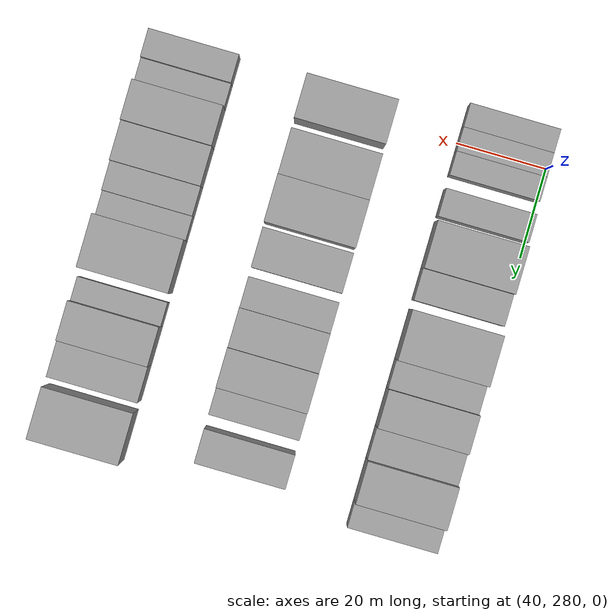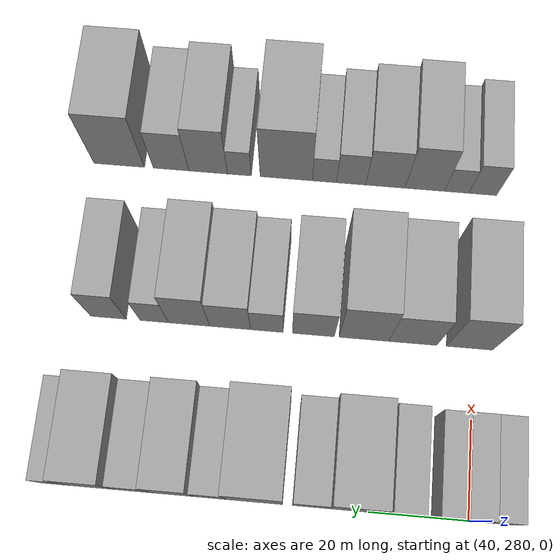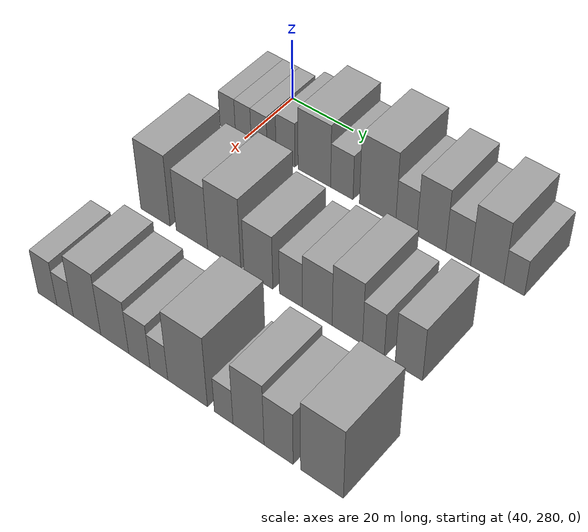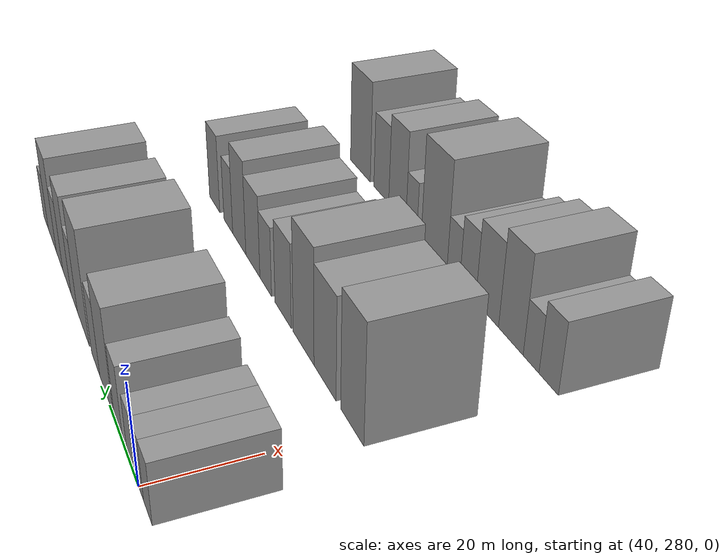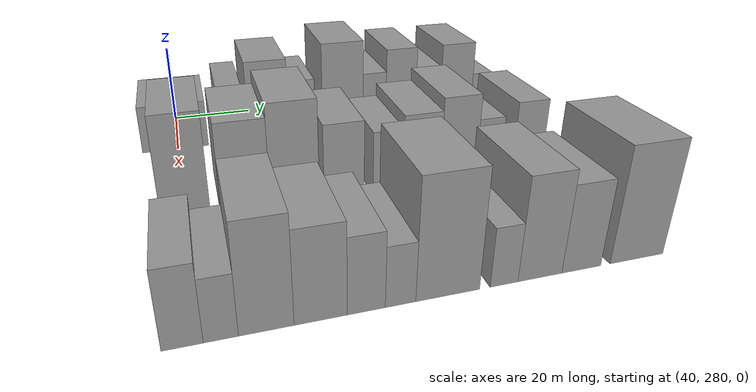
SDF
<sdf version="1.6">
 <world name="default">
  <model name="building_68">
   <static>1</static>
   <pose>50.0000 274.1723 0 0.000000 0.000000 0.000000</pose>
   <link name="link">
    <pose>0 0 6.00 0 0 0</pose>
    <collision name="collision"><geometry><box><size>20.0000 5.2593 12.0000</size></box></geometry></collision>
    <visual name="visual">
     <cast_shadows>0</cast_shadows>
     <geometry><box><size>20.0000 5.2593 12.0000</size></box></geometry>
     <material>
      <script>
       <uri>model://grey_wall/materials/scripts</uri>
       <uri>model://grey_wall/materials/textures</uri>
       <name>vrc/grey_wall</name>
      </script>
     </material>
    </visual>
   </link>
  </model>
  <model name="building_69">
   <static>1</static>
   <pose>50.0000 279.4774 0 0.000000 0.000000 0.000000</pose>
   <link name="link">
    <pose>0 0 6.00 0 0 0</pose>
    <collision name="collision"><geometry><box><size>20.0000 5.3509 12.0000</size></box></geometry></collision>
    <visual name="visual">
     <cast_shadows>0</cast_shadows>
     <geometry><box><size>20.0000 5.3509 12.0000</size></box></geometry>
     <material>
      <script>
       <uri>model://grey_wall/materials/scripts</uri>
       <uri>model://grey_wall/materials/textures</uri>
       <name>vrc/grey_wall</name>
      </script>
     </material>
    </visual>
   </link>
  </model>
  <model name="building_70">
   <static>1</static>
   <pose>50.0000 284.8204 0 0.000000 0.000000 0.000000</pose>
   <link name="link">
    <pose>0 0 6.00 0 0 0</pose>
    <collision name="collision"><geometry><box><size>20.0000 5.3351 12.0000</size></box></geometry></collision>
    <visual name="visual">
     <cast_shadows>0</cast_shadows>
     <geometry><box><size>20.0000 5.3351 12.0000</size></box></geometry>
     <material>
      <script>
       <uri>model://grey_wall/materials/scripts</uri>
       <uri>model://grey_wall/materials/textures</uri>
       <name>vrc/grey_wall</name>
      </script>
     </material>
    </visual>
   </link>
  </model>
  <model name="building_71">
   <static>1</static>
   <pose>50.0000 293.5836 0 0.000000 0.000000 0.000000</pose>
   <link name="link">
    <pose>0 0 7.50 0 0 0</pose>
    <collision name="collision"><geometry><box><size>20.0000 6.1914 15.0000</size></box></geometry></collision>
    <visual name="visual">
     <cast_shadows>0</cast_shadows>
     <geometry><box><size>20.0000 6.1914 15.0000</size></box></geometry>
     <material>
      <script>
       <uri>model://grey_wall/materials/scripts</uri>
       <uri>model://grey_wall/materials/textures</uri>
       <name>vrc/grey_wall</name>
      </script>
     </material>
    </visual>
   </link>
  </model>
  <model name="building_72">
   <static>1</static>
   <pose>50.0000 302.9027 0 0.000000 0.000000 0.000000</pose>
   <link name="link">
    <pose>0 0 10.50 0 0 0</pose>
    <collision name="collision"><geometry><box><size>20.0000 10.4468 21.0000</size></box></geometry></collision>
    <visual name="visual">
     <cast_shadows>0</cast_shadows>
     <geometry><box><size>20.0000 10.4468 21.0000</size></box></geometry>
     <material>
      <script>
       <uri>model://grey_wall/materials/scripts</uri>
       <uri>model://grey_wall/materials/textures</uri>
       <name>vrc/grey_wall</name>
      </script>
     </material>
    </visual>
   </link>
  </model>
  <model name="building_73">
   <static>1</static>
   <pose>50.0000 311.6492 0 0.000000 0.000000 0.000000</pose>
   <link name="link">
    <pose>0 0 7.50 0 0 0</pose>
    <collision name="collision"><geometry><box><size>20.0000 7.0461 15.0000</size></box></geometry></collision>
    <visual name="visual">
     <cast_shadows>0</cast_shadows>
     <geometry><box><size>20.0000 7.0461 15.0000</size></box></geometry>
     <material>
      <script>
       <uri>model://grey_wall/materials/scripts</uri>
       <uri>model://grey_wall/materials/textures</uri>
       <name>vrc/grey_wall</name>
      </script>
     </material>
    </visual>
   </link>
  </model>
  <model name="building_74">
   <static>1</static>
   <pose>50.0000 322.7267 0 0.000000 0.000000 0.000000</pose>
   <link name="link">
    <pose>0 0 12.00 0 0 0</pose>
    <collision name="collision"><geometry><box><size>20.0000 11.1089 24.0000</size></box></geometry></collision>
    <visual name="visual">
     <cast_shadows>0</cast_shadows>
     <geometry><box><size>20.0000 11.1089 24.0000</size></box></geometry>
     <material>
      <script>
       <uri>model://grey_wall/materials/scripts</uri>
       <uri>model://grey_wall/materials/textures</uri>
       <name>vrc/grey_wall</name>
      </script>
     </material>
    </visual>
   </link>
  </model>
  <model name="building_75">
   <static>1</static>
   <pose>50.0000 331.4624 0 0.000000 0.000000 0.000000</pose>
   <link name="link">
    <pose>0 0 7.50 0 0 0</pose>
    <collision name="collision"><geometry><box><size>20.0000 6.3625 15.0000</size></box></geometry></collision>
    <visual name="visual">
     <cast_shadows>0</cast_shadows>
     <geometry><box><size>20.0000 6.3625 15.0000</size></box></geometry>
     <material>
      <script>
       <uri>model://grey_wall/materials/scripts</uri>
       <uri>model://grey_wall/materials/textures</uri>
       <name>vrc/grey_wall</name>
      </script>
     </material>
    </visual>
   </link>
  </model>
  <model name="building_76">
   <static>1</static>
   <pose>50.0000 338.9023 0 0.000000 0.000000 0.000000</pose>
   <link name="link">
    <pose>0 0 10.50 0 0 0</pose>
    <collision name="collision"><geometry><box><size>20.0000 8.5175 21.0000</size></box></geometry></collision>
    <visual name="visual">
     <cast_shadows>0</cast_shadows>
     <geometry><box><size>20.0000 8.5175 21.0000</size></box></geometry>
     <material>
      <script>
       <uri>model://grey_wall/materials/scripts</uri>
       <uri>model://grey_wall/materials/textures</uri>
       <name>vrc/grey_wall</name>
      </script>
     </material>
    </visual>
   </link>
  </model>
  <model name="building_77">
   <static>1</static>
   <pose>50.0000 346.7569 0 0.000000 0.000000 0.000000</pose>
   <link name="link">
    <pose>0 0 7.50 0 0 0</pose>
    <collision name="collision"><geometry><box><size>20.0000 7.1917 15.0000</size></box></geometry></collision>
    <visual name="visual">
     <cast_shadows>0</cast_shadows>
     <geometry><box><size>20.0000 7.1917 15.0000</size></box></geometry>
     <material>
      <script>
       <uri>model://grey_wall/materials/scripts</uri>
       <uri>model://grey_wall/materials/textures</uri>
       <name>vrc/grey_wall</name>
      </script>
     </material>
    </visual>
   </link>
  </model>
  <model name="building_78">
   <static>1</static>
   <pose>50.0000 355.0587 0 0.000000 0.000000 0.000000</pose>
   <link name="link">
    <pose>0 0 10.50 0 0 0</pose>
    <collision name="collision"><geometry><box><size>20.0000 9.4119 21.0000</size></box></geometry></collision>
    <visual name="visual">
     <cast_shadows>0</cast_shadows>
     <geometry><box><size>20.0000 9.4119 21.0000</size></box></geometry>
     <material>
      <script>
       <uri>model://grey_wall/materials/scripts</uri>
       <uri>model://grey_wall/materials/textures</uri>
       <name>vrc/grey_wall</name>
      </script>
     </material>
    </visual>
   </link>
  </model>
  <model name="building_79">
   <static>1</static>
   <pose>50.0000 362.6301 0 0.000000 0.000000 0.000000</pose>
   <link name="link">
    <pose>0 0 6.00 0 0 0</pose>
    <collision name="collision"><geometry><box><size>20.0000 5.7309 12.0000</size></box></geometry></collision>
    <visual name="visual">
     <cast_shadows>0</cast_shadows>
     <geometry><box><size>20.0000 5.7309 12.0000</size></box></geometry>
     <material>
      <script>
       <uri>model://grey_wall/materials/scripts</uri>
       <uri>model://grey_wall/materials/textures</uri>
       <name>vrc/grey_wall</name>
      </script>
     </material>
    </visual>
   </link>
  </model>
  <model name="building_156">
   <static>1</static>
   <pose>85.0000 280.7438 0 0.000000 0.000000 0.000000</pose>
   <link name="link">
    <pose>0 0 12.00 0 0 0</pose>
    <collision name="collision"><geometry><box><size>20.0000 9.7118 24.0000</size></box></geometry></collision>
    <visual name="visual">
     <cast_shadows>0</cast_shadows>
     <geometry><box><size>20.0000 9.7118 24.0000</size></box></geometry>
     <material>
      <script>
       <uri>model://grey_wall/materials/scripts</uri>
       <uri>model://grey_wall/materials/textures</uri>
       <name>vrc/grey_wall</name>
      </script>
     </material>
    </visual>
   </link>
  </model>
  <model name="building_157">
   <static>1</static>
   <pose>85.0000 292.6881 0 0.000000 0.000000 0.000000</pose>
   <link name="link">
    <pose>0 0 10.50 0 0 0</pose>
    <collision name="collision"><geometry><box><size>20.0000 10.1768 21.0000</size></box></geometry></collision>
    <visual name="visual">
     <cast_shadows>0</cast_shadows>
     <geometry><box><size>20.0000 10.1768 21.0000</size></box></geometry>
     <material>
      <script>
       <uri>model://grey_wall/materials/scripts</uri>
       <uri>model://grey_wall/materials/textures</uri>
       <name>vrc/grey_wall</name>
      </script>
     </material>
    </visual>
   </link>
  </model>
  <model name="building_158">
   <static>1</static>
   <pose>85.0000 303.0024 0 0.000000 0.000000 0.000000</pose>
   <link name="link">
    <pose>0 0 12.00 0 0 0</pose>
    <collision name="collision"><geometry><box><size>20.0000 10.4519 24.0000</size></box></geometry></collision>
    <visual name="visual">
     <cast_shadows>0</cast_shadows>
     <geometry><box><size>20.0000 10.4519 24.0000</size></box></geometry>
     <material>
      <script>
       <uri>model://grey_wall/materials/scripts</uri>
       <uri>model://grey_wall/materials/textures</uri>
       <name>vrc/grey_wall</name>
      </script>
     </material>
    </visual>
   </link>
  </model>
  <model name="building_159">
   <static>1</static>
   <pose>85.0000 313.6577 0 0.000000 0.000000 0.000000</pose>
   <link name="link">
    <pose>0 0 9.00 0 0 0</pose>
    <collision name="collision"><geometry><box><size>20.0000 8.8586 18.0000</size></box></geometry></collision>
    <visual name="visual">
     <cast_shadows>0</cast_shadows>
     <geometry><box><size>20.0000 8.8586 18.0000</size></box></geometry>
     <material>
      <script>
       <uri>model://grey_wall/materials/scripts</uri>
       <uri>model://grey_wall/materials/textures</uri>
       <name>vrc/grey_wall</name>
      </script>
     </material>
    </visual>
   </link>
  </model>
  <model name="building_160">
   <static>1</static>
   <pose>85.0000 323.5166 0 0.000000 0.000000 0.000000</pose>
   <link name="link">
    <pose>0 0 7.50 0 0 0</pose>
    <collision name="collision"><geometry><box><size>20.0000 6.8592 15.0000</size></box></geometry></collision>
    <visual name="visual">
     <cast_shadows>0</cast_shadows>
     <geometry><box><size>20.0000 6.8592 15.0000</size></box></geometry>
     <material>
      <script>
       <uri>model://grey_wall/materials/scripts</uri>
       <uri>model://grey_wall/materials/textures</uri>
       <name>vrc/grey_wall</name>
      </script>
     </material>
    </visual>
   </link>
  </model>
  <model name="building_161">
   <static>1</static>
   <pose>85.0000 331.3080 0 0.000000 0.000000 0.000000</pose>
   <link name="link">
    <pose>0 0 9.00 0 0 0</pose>
    <collision name="collision"><geometry><box><size>20.0000 8.7237 18.0000</size></box></geometry></collision>
    <visual name="visual">
     <cast_shadows>0</cast_shadows>
     <geometry><box><size>20.0000 8.7237 18.0000</size></box></geometry>
     <material>
      <script>
       <uri>model://grey_wall/materials/scripts</uri>
       <uri>model://grey_wall/materials/textures</uri>
       <name>vrc/grey_wall</name>
      </script>
     </material>
    </visual>
   </link>
  </model>
  <model name="building_162">
   <static>1</static>
   <pose>85.0000 340.0414 0 0.000000 0.000000 0.000000</pose>
   <link name="link">
    <pose>0 0 10.50 0 0 0</pose>
    <collision name="collision"><geometry><box><size>20.0000 8.7431 21.0000</size></box></geometry></collision>
    <visual name="visual">
     <cast_shadows>0</cast_shadows>
     <geometry><box><size>20.0000 8.7431 21.0000</size></box></geometry>
     <material>
      <script>
       <uri>model://grey_wall/materials/scripts</uri>
       <uri>model://grey_wall/materials/textures</uri>
       <name>vrc/grey_wall</name>
      </script>
     </material>
    </visual>
   </link>
  </model>
  <model name="building_163">
   <static>1</static>
   <pose>85.0000 347.4585 0 0.000000 0.000000 0.000000</pose>
   <link name="link">
    <pose>0 0 7.50 0 0 0</pose>
    <collision name="collision"><geometry><box><size>20.0000 6.0912 15.0000</size></box></geometry></collision>
    <visual name="visual">
     <cast_shadows>0</cast_shadows>
     <geometry><box><size>20.0000 6.0912 15.0000</size></box></geometry>
     <material>
      <script>
       <uri>model://grey_wall/materials/scripts</uri>
       <uri>model://grey_wall/materials/textures</uri>
       <name>vrc/grey_wall</name>
      </script>
     </material>
    </visual>
   </link>
  </model>
  <model name="building_164">
   <static>1</static>
   <pose>85.0000 357.2922 0 0.000000 0.000000 0.000000</pose>
   <link name="link">
    <pose>0 0 9.00 0 0 0</pose>
    <collision name="collision"><geometry><box><size>20.0000 7.5762 18.0000</size></box></geometry></collision>
    <visual name="visual">
     <cast_shadows>0</cast_shadows>
     <geometry><box><size>20.0000 7.5762 18.0000</size></box></geometry>
     <material>
      <script>
       <uri>model://grey_wall/materials/scripts</uri>
       <uri>model://grey_wall/materials/textures</uri>
       <name>vrc/grey_wall</name>
      </script>
     </material>
    </visual>
   </link>
  </model>
  <model name="building_239">
   <static>1</static>
   <pose>120.0000 278.7130 0 0.000000 0.000000 0.000000</pose>
   <link name="link">
    <pose>0 0 7.50 0 0 0</pose>
    <collision name="collision"><geometry><box><size>20.0000 6.2513 15.0000</size></box></geometry></collision>
    <visual name="visual">
     <cast_shadows>0</cast_shadows>
     <geometry><box><size>20.0000 6.2513 15.0000</size></box></geometry>
     <material>
      <script>
       <uri>model://grey_wall/materials/scripts</uri>
       <uri>model://grey_wall/materials/textures</uri>
       <name>vrc/grey_wall</name>
      </script>
     </material>
    </visual>
   </link>
  </model>
  <model name="building_240">
   <static>1</static>
   <pose>120.0000 284.5061 0 0.000000 0.000000 0.000000</pose>
   <link name="link">
    <pose>0 0 6.00 0 0 0</pose>
    <collision name="collision"><geometry><box><size>20.0000 5.3349 12.0000</size></box></geometry></collision>
    <visual name="visual">
     <cast_shadows>0</cast_shadows>
     <geometry><box><size>20.0000 5.3349 12.0000</size></box></geometry>
     <material>
      <script>
       <uri>model://grey_wall/materials/scripts</uri>
       <uri>model://grey_wall/materials/textures</uri>
       <name>vrc/grey_wall</name>
      </script>
     </material>
    </visual>
   </link>
  </model>
  <model name="building_241">
   <static>1</static>
   <pose>120.0000 291.5704 0 0.000000 0.000000 0.000000</pose>
   <link name="link">
    <pose>0 0 10.50 0 0 0</pose>
    <collision name="collision"><geometry><box><size>20.0000 8.7937 21.0000</size></box></geometry></collision>
    <visual name="visual">
     <cast_shadows>0</cast_shadows>
     <geometry><box><size>20.0000 8.7937 21.0000</size></box></geometry>
     <material>
      <script>
       <uri>model://grey_wall/materials/scripts</uri>
       <uri>model://grey_wall/materials/textures</uri>
       <name>vrc/grey_wall</name>
      </script>
     </material>
    </visual>
   </link>
  </model>
  <model name="building_242">
   <static>1</static>
   <pose>120.0000 300.3379 0 0.000000 0.000000 0.000000</pose>
   <link name="link">
    <pose>0 0 9.00 0 0 0</pose>
    <collision name="collision"><geometry><box><size>20.0000 8.7414 18.0000</size></box></geometry></collision>
    <visual name="visual">
     <cast_shadows>0</cast_shadows>
     <geometry><box><size>20.0000 8.7414 18.0000</size></box></geometry>
     <material>
      <script>
       <uri>model://grey_wall/materials/scripts</uri>
       <uri>model://grey_wall/materials/textures</uri>
       <name>vrc/grey_wall</name>
      </script>
     </material>
    </visual>
   </link>
  </model>
  <model name="building_243">
   <static>1</static>
   <pose>120.0000 307.9558 0 0.000000 0.000000 0.000000</pose>
   <link name="link">
    <pose>0 0 7.50 0 0 0</pose>
    <collision name="collision"><geometry><box><size>20.0000 6.4944 15.0000</size></box></geometry></collision>
    <visual name="visual">
     <cast_shadows>0</cast_shadows>
     <geometry><box><size>20.0000 6.4944 15.0000</size></box></geometry>
     <material>
      <script>
       <uri>model://grey_wall/materials/scripts</uri>
       <uri>model://grey_wall/materials/textures</uri>
       <name>vrc/grey_wall</name>
      </script>
     </material>
    </visual>
   </link>
  </model>
  <model name="building_244">
   <static>1</static>
   <pose>120.0000 313.8842 0 0.000000 0.000000 0.000000</pose>
   <link name="link">
    <pose>0 0 6.00 0 0 0</pose>
    <collision name="collision"><geometry><box><size>20.0000 5.3625 12.0000</size></box></geometry></collision>
    <visual name="visual">
     <cast_shadows>0</cast_shadows>
     <geometry><box><size>20.0000 5.3625 12.0000</size></box></geometry>
     <material>
      <script>
       <uri>model://grey_wall/materials/scripts</uri>
       <uri>model://grey_wall/materials/textures</uri>
       <name>vrc/grey_wall</name>
      </script>
     </material>
    </visual>
   </link>
  </model>
  <model name="building_245">
   <static>1</static>
   <pose>120.0000 322.4097 0 0.000000 0.000000 0.000000</pose>
   <link name="link">
    <pose>0 0 12.00 0 0 0</pose>
    <collision name="collision"><geometry><box><size>20.0000 11.6884 24.0000</size></box></geometry></collision>
    <visual name="visual">
     <cast_shadows>0</cast_shadows>
     <geometry><box><size>20.0000 11.6884 24.0000</size></box></geometry>
     <material>
      <script>
       <uri>model://grey_wall/materials/scripts</uri>
       <uri>model://grey_wall/materials/textures</uri>
       <name>vrc/grey_wall</name>
      </script>
     </material>
    </visual>
   </link>
  </model>
  <model name="building_246">
   <static>1</static>
   <pose>120.0000 332.9211 0 0.000000 0.000000 0.000000</pose>
   <link name="link">
    <pose>0 0 6.00 0 0 0</pose>
    <collision name="collision"><geometry><box><size>20.0000 5.3346 12.0000</size></box></geometry></collision>
    <visual name="visual">
     <cast_shadows>0</cast_shadows>
     <geometry><box><size>20.0000 5.3346 12.0000</size></box></geometry>
     <material>
      <script>
       <uri>model://grey_wall/materials/scripts</uri>
       <uri>model://grey_wall/materials/textures</uri>
       <name>vrc/grey_wall</name>
      </script>
     </material>
    </visual>
   </link>
  </model>
  <model name="building_247">
   <static>1</static>
   <pose>120.0000 339.9510 0 0.000000 0.000000 0.000000</pose>
   <link name="link">
    <pose>0 0 10.50 0 0 0</pose>
    <collision name="collision"><geometry><box><size>20.0000 8.7251 21.0000</size></box></geometry></collision>
    <visual name="visual">
     <cast_shadows>0</cast_shadows>
     <geometry><box><size>20.0000 8.7251 21.0000</size></box></geometry>
     <material>
      <script>
       <uri>model://grey_wall/materials/scripts</uri>
       <uri>model://grey_wall/materials/textures</uri>
       <name>vrc/grey_wall</name>
      </script>
     </material>
    </visual>
   </link>
  </model>
  <model name="building_248">
   <static>1</static>
   <pose>120.0000 348.3053 0 0.000000 0.000000 0.000000</pose>
   <link name="link">
    <pose>0 0 9.00 0 0 0</pose>
    <collision name="collision"><geometry><box><size>20.0000 7.9835 18.0000</size></box></geometry></collision>
    <visual name="visual">
     <cast_shadows>0</cast_shadows>
     <geometry><box><size>20.0000 7.9835 18.0000</size></box></geometry>
     <material>
      <script>
       <uri>model://grey_wall/materials/scripts</uri>
       <uri>model://grey_wall/materials/textures</uri>
       <name>vrc/grey_wall</name>
      </script>
     </material>
    </visual>
   </link>
  </model>
  <model name="building_249">
   <static>1</static>
   <pose>120.0000 360.0003 0 0.000000 0.000000 0.000000</pose>
   <link name="link">
    <pose>0 0 12.00 0 0 0</pose>
    <collision name="collision"><geometry><box><size>20.0000 11.4066 24.0000</size></box></geometry></collision>
    <visual name="visual">
     <cast_shadows>0</cast_shadows>
     <geometry><box><size>20.0000 11.4066 24.0000</size></box></geometry>
     <material>
      <script>
       <uri>model://grey_wall/materials/scripts</uri>
       <uri>model://grey_wall/materials/textures</uri>
       <name>vrc/grey_wall</name>
      </script>
     </material>
    </visual>
   </link>
  </model>
 </world>
</sdf>
